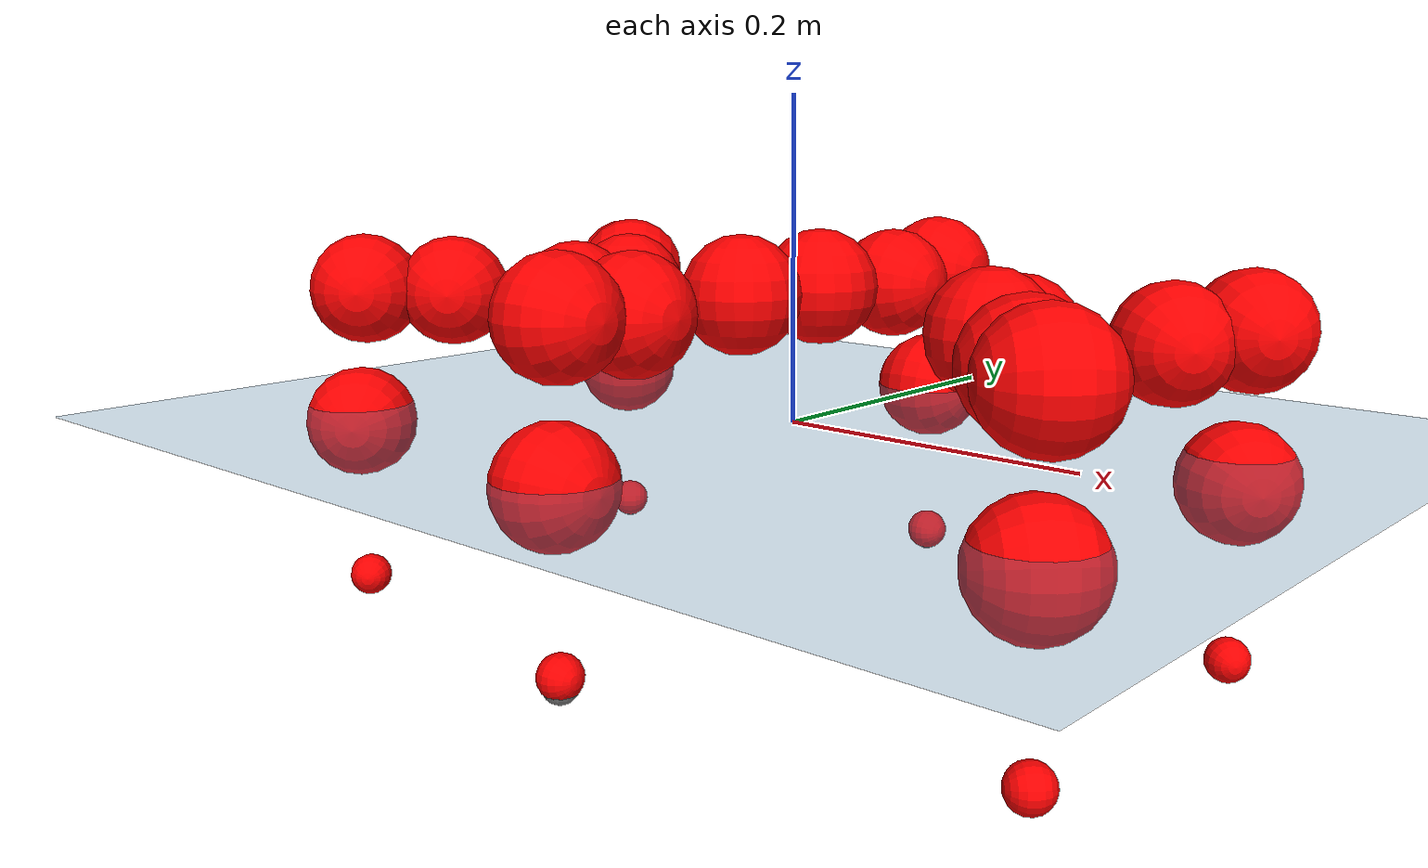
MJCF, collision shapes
<mujoco model="Golem">
  <compiler angle="radian" assetdir="assets" balanceinertia="true" inertiafromgeom="false"/>

  <option timestep="0.005" density="1.2" viscosity="2e-05"/>

  <size nkey="1"/>

  <visual>
    <quality shadowsize="8192"/>
    <map shadowclip="0.5"/>
  </visual>

  <default>
    <default class="/">
      <joint armature="0.01" damping="0.01" frictionloss="0.01"/>
      <geom contype="0" conaffinity="0" group="1" solref="-1000 -80"/>
      <site size="0.01 0.005 0.005" group="5"/>
      <general forcelimited="true" biastype="affine" gainprm="25" biasprm="0 -25 -0.5"/>
      <default class="visual">
        <geom type="mesh" group="2"/>
      </default>
      <default class="collision">
        <geom group="3"/>
      </default>
      <default class="foot">
        <geom size="0.01 0 0" condim="6" group="4" priority="1" solimp="0.015 1 0.01"/>
      </default>
      <default class="reward_collision_sphere">
        <geom group="5" rgba="1 0 0 1"/>
      </default>
    </default>
  </default>

  <asset>
    <texture type="skybox" colorspace="auto" name="//unnamed_texture_0" builtin="gradient" rgb1="0.95 0.95 0.95" rgb2="0.95 0.95 0.95" width="100" height="600"/>
    <texture type="2d" colorspace="auto" name="texplane" builtin="checker" rgb1="0.345 0.575 0.748" rgb2="0.345 0.575 0.748" markrgb="1 1 1" width="512" height="512"/>
    <material name="MatPlane" class="/" texture="texplane" texuniform="true" texrepeat="2 2" specular="0.9"/>
    <mesh name="body" class="/" file="body.stl" scale="0.001 0.001 0.001"/>
    <mesh name="coxa" class="/" file="coxa.stl" scale="0.001 0.001 0.001"/>
    <mesh name="femur" class="/" file="femur.stl" scale="0.001 0.001 0.001"/>
    <mesh name="tibia" class="/" file="tibia.stl" scale="0.001 0.001 0.001"/>
    <mesh name="tarsus" class="/" file="tarsus.stl" scale="0.001 0.001 0.001"/>
  </asset>

  <worldbody>
    <geom name="floor" class="/" size="100 100 0.125" type="plane" group="0" material="MatPlane"/>
    <light name="toplight_shadow" class="/" pos="0 0 5" dir="0.0990148 0.0990148 -0.990148" type="directional" ambient="0.04 0.04 0.04" diffuse="0.55 0.55 0.55" specular="0.12 0.12 0.12"/>
    <light name="toplight_fill" class="/" pos="0 0 5" dir="0.0990148 0.0990148 -0.990148" type="directional" castshadow="false" ambient="0.04 0.04 0.04" diffuse="0.3 0.3 0.3" specular="0.08 0.08 0.08"/>
    <body name="trunk" pos="-0.0014124 -0.0076871 -0.00371527" quat="1 -0.000224005 -0.000709437 0.000499142">
      <inertial pos="0.00226868 0.00142566 0.00896321" quat="0.999952 0.00107274 0.00385466 0.0089652" mass="2.26575" diaginertia="0.00912397 0.000231791 0.0282829"/>
      <joint name="//unnamed_joint_0" type="free"/>
      <geom name="//unnamed_geom_1" class="/" pos="0 0 0.0784453" quat="1 0 0 0" type="mesh" rgba="0.9 0.9 0.9 1" mesh="body"/>
      <site name="imu" class="/" pos="0.120044 0.0215871 0.113694" size="0.0089744"/>
      <camera name="track" class="/" pos="0 -0.953881 0" quat="0.707107 0.707107 0 0" mode="trackcom"/>
      <camera name="ego_camera" class="/" pos="0.128657 0 0.122571" quat="-0.5 -0.5 0.5 0.5"/>
      <body name="coxa_RR" pos="-0.179178 -0.0478639 0.0733093" quat="0.385019 0.000413931 0.00241406 -0.922906">
        <inertial pos="6.49428e-05 0.0090165 -0.0084621" quat="0.999894 -0.00863321 -0.0113708 -0.00268526" mass="0.130569" diaginertia="0.00911882 0.000245496 0.0275867"/>
        <joint name="coxa_joint_RR" class="/" pos="0 0 0" axis="0.000225441 0.0093805 -0.999956" range="-3.2506 3.13013" armature="0.00871256" damping="0.0229894" frictionloss="0.00834352"/>
        <geom name="//unnamed_geom_2" class="/" type="mesh" rgba="0.2 0.2 0.2 1" mesh="coxa"/>
        <geom name="//unnamed_geom_3" class="reward_collision_sphere" size="0.0358976" pos="-0.0296901 0 0"/>
        <body name="femur_RR" pos="0.049925 0.000635451 0.00398649" quat="0.498401 -0.499202 0.499302 0.503082">
          <inertial pos="0.00559418 -0.00209423 -0.00013984" quat="0.999999 0.000532044 -0.00117056 -0.000490639" mass="0.14016" diaginertia="0.00918005 0.000235815 0.0265578"/>
          <joint name="femur_joint_RR" class="/" pos="0 0 0" axis="0.00403058 -0.011466 -0.999926" range="-3.05063 3.06966" armature="0.011445" damping="0.0270464" frictionloss="0.00925814"/>
          <geom name="//unnamed_geom_4" class="/" type="mesh" rgba="0.9 0.9 0.9 1" mesh="femur"/>
          <geom name="//unnamed_geom_5" class="reward_collision_sphere" size="0.0358976"/>
          <body name="tibia_RR" pos="-0.00257424 -0.0563213 0.00254643" quat="0.000713682 1 -0.000408053 8.22382e-06">
            <inertial pos="-0.00296924 0.00206619 0.000319355" quat="0.999869 -0.0127392 0.0024047 -0.00964028" mass="0.149131" diaginertia="0.00893402 0.000220153 0.0234784"/>
            <joint name="tibia_joint_RR" class="/" pos="0 0 0" axis="-0.0227767 0.0113712 0.999676" stiffness="0.0106038" range="-3.09016 3.34294" armature="0.00846279" damping="0" frictionloss="0.00956285"/>
            <geom name="//unnamed_geom_6" class="/" type="mesh" rgba="0.2 0.2 0.2 1" mesh="tibia"/>
            <geom name="//unnamed_geom_7" class="reward_collision_sphere" size="0.0358976"/>
            <body name="tarsus_RR" pos="0.0882643 0.00762507 0.00023669" quat="1 -0.000650912 -0.000320071 0.000422458">
              <inertial pos="0.0539057 -0.0100603 0.00659534" quat="0.502716 0.492549 0.495786 0.508791" mass="0.127747" diaginertia="0.00893773 0.000204189 0.0247483"/>
              <joint name="tarsus_joint_RR" class="/" pos="0 0 0" axis="-0.0181637 0.00551808 0.99982" range="-3.31524 3.15652" armature="0.00851213" damping="0.0448838" frictionloss="0.00767584"/>
              <geom name="//unnamed_geom_8" class="/" type="mesh" rgba="0.9 0.9 0.9 1" mesh="tarsus"/>
              <geom name="foot_1" class="foot" size="0.00834417" pos="0.110843 0 0" quat="0 -0.707107 0 0.707107"/>
              <geom name="//unnamed_geom_10" class="reward_collision_sphere" size="0.0358976"/>
              <geom name="//unnamed_geom_11" class="reward_collision_sphere" size="0.0134616" pos="0.10639 0 0"/>
              <site name="foot_1" class="foot" pos="0.110843 0 0" quat="0 -0.707107 0 0.707107" size="0.0089744"/>
            </body>
          </body>
        </body>
      </body>
      <body name="coxa_RM" pos="-0.00239877 -0.065054 0.0867676" quat="0.706913 0.000275771 -0.000190223 -0.7073">
        <inertial pos="-0.00103549 -0.00231227 -0.000330495" quat="0.999952 -0.00444441 -0.00867335 -0.00116304" mass="0.152631" diaginertia="0.00952835 0.00024079 0.0275711"/>
        <joint name="coxa_joint_RM" class="/" pos="0 0 0" axis="0.00729777 0.00565516 -0.999957" stiffness="0.0404156" range="-3.15065 3.14135" armature="0.00813599" damping="0.0317662" frictionloss="0.0133477"/>
        <geom name="//unnamed_geom_12" class="/" type="mesh" rgba="0.2 0.2 0.2 1" mesh="coxa"/>
        <geom name="//unnamed_geom_13" class="reward_collision_sphere" size="0.0358976" pos="-0.0296901 0 0"/>
        <body name="femur_RM" pos="0.0542448 -0.00429958 -0.00342553" quat="0.499937 -0.499842 0.500428 0.499793">
          <inertial pos="-0.00141798 0.00306945 -0.0056841" quat="0.999999 0.00156891 0.00036819 -0.000207708" mass="0.13783" diaginertia="0.0101843 0.000243569 0.0267684"/>
          <joint name="femur_joint_RM" class="/" pos="0 0 0" axis="0.000350774 0.00230078 -0.999997" stiffness="0.00353546" range="-3.13535 3.19723" armature="0.00810592" damping="0.0340435" frictionloss="0.00807566"/>
          <geom name="//unnamed_geom_14" class="/" type="mesh" rgba="0.9 0.9 0.9 1" mesh="femur"/>
          <geom name="//unnamed_geom_15" class="reward_collision_sphere" size="0.0358976"/>
          <body name="tibia_RM" pos="-0.00417291 -0.0544467 0.000487774" quat="-0.000136755 1 -0.000216124 5.96853e-05">
            <inertial pos="0.00900939 0.00777329 -0.000832015" quat="0.998944 0.0110547 0.0347488 -0.0279379" mass="0.146917" diaginertia="0.0092328 0.000245395 0.0306457"/>
            <joint name="tibia_joint_RM" class="/" pos="0 0 0" axis="0.00138369 -0.00611157 0.99998" range="-3.09915 3.08945" armature="0.00755349" damping="0" frictionloss="0.00738264"/>
            <geom name="//unnamed_geom_16" class="/" type="mesh" rgba="0.2 0.2 0.2 1" mesh="tibia"/>
            <geom name="//unnamed_geom_17" class="reward_collision_sphere" size="0.0358976"/>
            <body name="tarsus_RM" pos="0.0898954 0.00479659 0.000154168" quat="1 2.20624e-05 2.55786e-05 -6.35581e-05">
              <inertial pos="0.0579265 0.00306194 -0.000722004" quat="0.500448 0.499683 0.493394 0.50639" mass="0.136051" diaginertia="0.00879187 0.000229864 0.0261786"/>
              <joint name="tarsus_joint_RM" class="/" pos="0 0 0" axis="-2.98926e-05 0.000669519 1" stiffness="0.00911258" range="-3.14314 3.09789" armature="0.0128377" damping="0" frictionloss="0.00974873"/>
              <geom name="//unnamed_geom_18" class="/" type="mesh" rgba="0.9 0.9 0.9 1" mesh="tarsus"/>
              <geom name="foot_2" class="foot" size="0.0109769" pos="0.110843 0 0" quat="0 -0.707107 0 0.707107"/>
              <geom name="//unnamed_geom_20" class="reward_collision_sphere" size="0.0358976"/>
              <geom name="//unnamed_geom_21" class="reward_collision_sphere" size="0.0134616" pos="0.10639 0 0"/>
              <site name="foot_2" class="foot" pos="0.110843 0 0" quat="0 -0.707107 0 0.707107" size="0.0089744"/>
            </body>
          </body>
        </body>
      </body>
      <body name="coxa_RF" pos="0.181821 -0.0413727 0.0781769" quat="0.923871 -4.85904e-05 -8.96284e-05 -0.382704">
        <inertial pos="-0.00678968 2.55954e-05 -0.000418519" quat="0.99997 -0.00613253 0.00408108 -0.00234066" mass="0.142641" diaginertia="0.00852419 0.000250483 0.0304038"/>
        <joint name="coxa_joint_RF" class="/" pos="0 0 0" axis="0.00316771 0.00136323 -0.999994" stiffness="0.00231607" range="-3.06024 3.10478" armature="0.0102511" damping="0.0313145" frictionloss="0.00811855"/>
        <geom name="//unnamed_geom_22" class="/" type="mesh" rgba="0.2 0.2 0.2 1" mesh="coxa"/>
        <geom name="//unnamed_geom_23" class="reward_collision_sphere" size="0.0358976" pos="-0.0296901 0 0"/>
        <body name="femur_RF" pos="0.0506037 0.000520642 -0.00343585" quat="0.499376 -0.499094 0.500731 0.500796">
          <inertial pos="-0.00303192 -0.00127746 0.00598534" quat="1 -0.000890568 0.000407446 0.000151262" mass="0.150345" diaginertia="0.00953669 0.000212433 0.027364"/>
          <joint name="femur_joint_RF" class="/" pos="0 0 0" axis="-0.00370185 0.00583679 -0.999976" stiffness="0.0205979" range="-3.27975 3.11182" armature="0.00688671" damping="0.0332403" frictionloss="0.00845407"/>
          <geom name="//unnamed_geom_24" class="/" type="mesh" rgba="0.9 0.9 0.9 1" mesh="femur"/>
          <geom name="//unnamed_geom_25" class="reward_collision_sphere" size="0.0358976"/>
          <body name="tibia_RF" pos="-0.00285689 -0.0517257 -0.00327899" quat="-5.26469e-05 1 -0.000614317 -0.000167235">
            <inertial pos="-0.00115192 -0.00422187 0.00230089" quat="0.999999 0.00107374 -0.000162526 0.000607377" mass="0.146616" diaginertia="0.00842115 0.000260819 0.0259096"/>
            <joint name="tibia_joint_RF" class="/" pos="0 0 0" axis="-0.00214378 -0.00177242 0.999996" range="-3.10205 3.12479" armature="0.00823028" damping="0.00642036" frictionloss="0.0117358"/>
            <geom name="//unnamed_geom_26" class="/" type="mesh" rgba="0.2 0.2 0.2 1" mesh="tibia"/>
            <geom name="//unnamed_geom_27" class="reward_collision_sphere" size="0.0358976"/>
            <body name="tarsus_RF" pos="0.0885973 -0.00788228 0.00078374" quat="0.999991 -0.00333827 0.00163218 0.00201088">
              <inertial pos="0.0642963 0.00879845 -0.000478563" quat="0.526224 0.479781 0.470692 0.520911" mass="0.151516" diaginertia="0.00832731 0.000269157 0.0268975"/>
              <joint name="tarsus_joint_RF" class="/" pos="0 0 0" axis="-0.017954 -0.0232182 0.999569" stiffness="0.0417022" range="-3.3093 3.10343" armature="0.00466203" damping="0" frictionloss="0.00926245"/>
              <geom name="//unnamed_geom_28" class="/" type="mesh" rgba="0.9 0.9 0.9 1" mesh="tarsus"/>
              <geom name="foot_3" class="foot" size="0.00898404" pos="0.110843 0 0" quat="0 -0.707107 0 0.707107"/>
              <geom name="//unnamed_geom_30" class="reward_collision_sphere" size="0.0358976"/>
              <geom name="//unnamed_geom_31" class="reward_collision_sphere" size="0.0134616" pos="0.10639 0 0"/>
              <site name="foot_3" class="foot" pos="0.110843 0 0" quat="0 -0.707107 0 0.707107" size="0.0089744"/>
            </body>
          </body>
        </body>
      </body>
      <body name="coxa_LR" pos="-0.174487 0.0385879 0.0756593" quat="0.382022 0.000417928 0.000375573 0.924153">
        <inertial pos="0.000313186 0.0091757 0.000329262" quat="0.999541 -0.0222453 0.00185902 -0.0204659" mass="0.156848" diaginertia="0.0107316 0.000245891 0.0315001"/>
        <joint name="coxa_joint_LR" class="/" pos="0 0 0" axis="0.00337532 -0.0117028 -0.999926" stiffness="0.0233147" range="-3.09416 2.96629" armature="0.0124811" damping="0" frictionloss="0.00837634"/>
        <geom name="//unnamed_geom_32" class="/" type="mesh" rgba="0.2 0.2 0.2 1" mesh="coxa"/>
        <geom name="//unnamed_geom_33" class="reward_collision_sphere" size="0.0358976" pos="-0.0296901 0 0"/>
        <body name="femur_LR" pos="0.0490267 -9.21681e-05 0.00397387" quat="0.499193 -0.498805 0.49992 0.502075">
          <inertial pos="-0.00042321 0.000721876 0.000868278" quat="0.999089 0.00973091 0.0192024 -0.0368473" mass="0.14873" diaginertia="0.00958001 0.000243116 0.0238279"/>
          <joint name="femur_joint_LR" class="/" pos="0 0 0" axis="0.00452153 0.0128895 0.999907" stiffness="0.0309553" range="-3.33264 3.26042" armature="0.00755077" damping="0.0335924" frictionloss="0.00821192"/>
          <geom name="//unnamed_geom_34" class="/" type="mesh" rgba="0.9 0.9 0.9 1" mesh="femur"/>
          <geom name="//unnamed_geom_35" class="reward_collision_sphere" size="0.0358976"/>
          <body name="tibia_LR" pos="0.00397403 -0.0506644 0.00446291" quat="0.0013249 0.999999 0.000428313 0.000556873">
            <inertial pos="-0.00170836 0.00858749 -0.00460712" quat="0.999833 -0.00194638 0.0130508 -0.0126712" mass="0.148755" diaginertia="0.00916965 0.000245659 0.0283432"/>
            <joint name="tibia_joint_LR" class="/" pos="0 0 0" axis="0.00108662 -0.00187569 -0.999998" stiffness="0.00207138" range="-3.01671 3.07129" armature="0.0103869" damping="0.0645169" frictionloss="0.00718879"/>
            <geom name="//unnamed_geom_36" class="/" type="mesh" rgba="0.2 0.2 0.2 1" mesh="tibia"/>
            <geom name="//unnamed_geom_37" class="reward_collision_sphere" size="0.0358976"/>
            <body name="tarsus_LR" pos="0.077419 0.000582012 -0.000546607" quat="0.999994 -0.00238516 -0.00150883 -0.00204948">
              <inertial pos="0.053919 -0.000687997 0.00102001" quat="0.490759 0.513726 0.506842 0.488214" mass="0.137301" diaginertia="0.00923729 0.000231693 0.0267522"/>
              <joint name="tarsus_joint_LR" class="/" pos="0 0 0" axis="0.00418901 0.0137702 -0.999896" stiffness="0.034174" range="-2.99565 3.16485" armature="0.00880878" damping="0.0255713" frictionloss="0.0123854"/>
              <geom name="//unnamed_geom_38" class="/" type="mesh" rgba="0.9 0.9 0.9 1" mesh="tarsus"/>
              <geom name="foot_4" class="foot" size="0.00933396" pos="0.110843 0 0" quat="0.707107 0 -0.707107 0"/>
              <geom name="//unnamed_geom_40" class="reward_collision_sphere" size="0.0358976"/>
              <geom name="//unnamed_geom_41" class="reward_collision_sphere" size="0.0134616" pos="0.10639 0 0"/>
              <site name="foot_4" class="foot" pos="0.110843 0 0" quat="0.707107 0 -0.707107 0" size="0.0089744"/>
            </body>
          </body>
        </body>
      </body>
      <body name="coxa_LM" pos="0.00282197 0.0616274 0.0861818" quat="0.708093 -0.000668317 -0.000203222 0.706118">
        <inertial pos="0.00695722 0.000239671 0.00572912" quat="0.999997 -0.00145023 -0.00119655 -0.00145437" mass="0.151133" diaginertia="0.0105296 0.000280125 0.0255046"/>
        <joint name="coxa_joint_LM" class="/" pos="0 0 0" axis="0.00285384 -0.00503036 -0.999983" stiffness="0.00498724" range="-3.14261 3.11629" armature="0.00542117" damping="0.0499959" frictionloss="0.0108851"/>
        <geom name="//unnamed_geom_42" class="/" type="mesh" rgba="0.2 0.2 0.2 1" mesh="coxa"/>
        <geom name="//unnamed_geom_43" class="reward_collision_sphere" size="0.0358976" pos="-0.0296901 0 0"/>
        <body name="femur_LM" pos="0.0580778 0.00802729 -0.00591042" quat="0.500763 -0.499364 0.500193 0.49968">
          <inertial pos="-0.00587419 -0.0027441 -0.0077006" quat="0.999966 -0.00523547 -4.39829e-05 -0.00633453" mass="0.144254" diaginertia="0.00920653 0.00024533 0.0281045"/>
          <joint name="femur_joint_LM" class="/" pos="0 0 0" axis="0.00273104 0.00135077 0.999995" range="-3.10438 3.25459" armature="0.00791153" damping="0.0278254" frictionloss="0.00692158"/>
          <geom name="//unnamed_geom_44" class="/" type="mesh" rgba="0.9 0.9 0.9 1" mesh="femur"/>
          <geom name="//unnamed_geom_45" class="reward_collision_sphere" size="0.0358976"/>
          <body name="tibia_LM" pos="-0.00553793 -0.050028 -0.0008296" quat="0.000398841 0.999999 0.00111941 -0.000134989">
            <inertial pos="0.00368106 0.00878768 -0.00967335" quat="0.998797 0.00632023 0.0392572 0.0287136" mass="0.151606" diaginertia="0.0092191 0.000254982 0.0295252"/>
            <joint name="tibia_joint_LM" class="/" pos="0 0 0" axis="-0.0244875 0.0133941 -0.99961" stiffness="0.045291" range="-3.17063 3.29191" armature="0.00845496" damping="0.0166374" frictionloss="0.00871724"/>
            <geom name="//unnamed_geom_46" class="/" type="mesh" rgba="0.2 0.2 0.2 1" mesh="tibia"/>
            <geom name="//unnamed_geom_47" class="reward_collision_sphere" size="0.0358976"/>
            <body name="tarsus_LM" pos="0.083428 0.00421831 -0.00745618" quat="1 -0.000333094 9.26886e-05 0.00037132">
              <inertial pos="0.0615077 0.000624352 0.00671414" quat="0.467273 0.528416 0.495669 0.5067" mass="0.13591" diaginertia="0.00949734 0.000272287 0.0300299"/>
              <joint name="tarsus_joint_LM" class="/" pos="0 0 0" axis="0.00663129 -0.0345548 -0.999381" stiffness="0.0381195" range="-3.18287 3.28655" armature="0.00988773" damping="0.00307753" frictionloss="0.00913818"/>
              <geom name="//unnamed_geom_48" class="/" type="mesh" rgba="0.9 0.9 0.9 1" mesh="tarsus"/>
              <geom name="foot_5" class="foot" size="0.00953008" pos="0.110843 0 0" quat="0.707107 0 -0.707107 0"/>
              <geom name="//unnamed_geom_50" class="reward_collision_sphere" size="0.0358976"/>
              <geom name="//unnamed_geom_51" class="reward_collision_sphere" size="0.0134616" pos="0.10639 0 0"/>
              <site name="foot_5" class="foot" pos="0.110843 0 0" quat="0.707107 0 -0.707107 0" size="0.0089744"/>
            </body>
          </body>
        </body>
      </body>
      <body name="coxa_LF" pos="0.174302 0.0412472 0.0707106" quat="0.92267 -0.00070888 -0.00237078 0.385584">
        <inertial pos="0.000127806 -0.000480788 -0.00161765" quat="0.998807 0.00030952 -0.0212036 -0.0439794" mass="0.130885" diaginertia="0.00992918 0.000225173 0.0313965"/>
        <joint name="coxa_joint_LF" class="/" pos="0 0 0" axis="-0.00137008 -4.63649e-05 -0.999999" stiffness="0.0442116" range="-3.14088 3.12956" armature="0.0101903" damping="0.0249201" frictionloss="0.00946297"/>
        <geom name="//unnamed_geom_52" class="/" type="mesh" rgba="0.2 0.2 0.2 1" mesh="coxa"/>
        <geom name="//unnamed_geom_53" class="reward_collision_sphere" size="0.0358976" pos="-0.0296901 0 0"/>
        <body name="femur_LF" pos="0.0574459 -0.000721458 -0.00488798" quat="0.498949 -0.50045 0.500299 0.500302">
          <inertial pos="-0.00723017 0.000370222 -0.00862806" quat="0.99999 0.00218959 0.00347027 -0.00202932" mass="0.156197" diaginertia="0.0101046 0.000246091 0.0299595"/>
          <joint name="femur_joint_LF" class="/" pos="0 0 0" axis="-0.0152269 0.0121601 0.99981" range="-3.15071 2.93976" armature="0.00655313" damping="0.0350374" frictionloss="0.00988626"/>
          <geom name="//unnamed_geom_54" class="/" type="mesh" rgba="0.9 0.9 0.9 1" mesh="femur"/>
          <geom name="//unnamed_geom_55" class="reward_collision_sphere" size="0.0358976"/>
          <body name="tibia_LF" pos="-0.00604676 -0.0471737 0.00358745" quat="-0.000686159 0.999997 0.00173113 0.00128474">
            <inertial pos="-0.000127478 0.000601164 -0.000402724" quat="0.999965 0.000610184 0.00194376 0.00813733" mass="0.142748" diaginertia="0.00920557 0.000251466 0.0274435"/>
            <joint name="tibia_joint_LF" class="/" pos="0 0 0" axis="-0.000888524 -0.0308 -0.999525" range="-3.11197 3.04342" armature="0.012559" damping="0" frictionloss="0.00877438"/>
            <geom name="//unnamed_geom_56" class="/" type="mesh" rgba="0.2 0.2 0.2 1" mesh="tibia"/>
            <geom name="//unnamed_geom_57" class="reward_collision_sphere" size="0.0358976"/>
            <body name="tarsus_LF" pos="0.0876892 -0.00359404 -0.000566818" quat="1 -0.000458666 0.000435948 -4.2743e-05">
              <inertial pos="0.0656872 -0.000715766 -0.000541684" quat="0.500212 0.499615 0.501099 0.499071" mass="0.153913" diaginertia="0.00969393 0.000254187 0.0274838"/>
              <joint name="tarsus_joint_LF" class="/" pos="0 0 0" axis="-0.0104804 0.00337976 -0.999939" stiffness="0.030918" range="-2.97917 2.96953" armature="0.00867674" damping="0.0225587" frictionloss="0.00805698"/>
              <geom name="//unnamed_geom_58" class="/" type="mesh" rgba="0.9 0.9 0.9 1" mesh="tarsus"/>
              <geom name="foot_6" class="foot" size="0.00762171" pos="0.110843 0 0" quat="0.707107 0 -0.707107 0"/>
              <geom name="//unnamed_geom_60" class="reward_collision_sphere" size="0.0358976"/>
              <geom name="//unnamed_geom_61" class="reward_collision_sphere" size="0.0134616" pos="0.10639 0 0"/>
              <site name="foot_6" class="foot" pos="0.110843 0 0" quat="0.707107 0 -0.707107 0" size="0.0089744"/>
            </body>
          </body>
        </body>
      </body>
    </body>
  </worldbody>

  <contact>
    <pair class="/" geom1="floor" geom2="foot_1" name="//unnamed_contact_0"/>
    <pair class="/" geom1="floor" geom2="foot_2" name="//unnamed_contact_1"/>
    <pair class="/" geom1="floor" geom2="foot_3" name="//unnamed_contact_2"/>
    <pair class="/" geom1="floor" geom2="foot_4" name="//unnamed_contact_3"/>
    <pair class="/" geom1="floor" geom2="foot_5" name="//unnamed_contact_4"/>
    <pair class="/" geom1="floor" geom2="foot_6" name="//unnamed_contact_5"/>
  </contact>

  <actuator>
    <general name="coxa_joint_RR" class="/" joint="coxa_joint_RR" forcerange="-6.12169 6.12169" gainprm="20.7128" biasprm="0 -20.7128 -0.404072"/>
    <general name="femur_joint_RR" class="/" joint="femur_joint_RR" forcerange="-7.22553 7.22553" gainprm="20.7128" biasprm="0 -20.7128 -0.404072"/>
    <general name="tibia_joint_RR" class="/" joint="tibia_joint_RR" forcerange="-8.74205 8.74205" gainprm="20.7128" biasprm="0 -20.7128 -0.404072"/>
    <general name="tarsus_joint_RR" class="/" joint="tarsus_joint_RR" forcerange="-7.58794 7.58794" gainprm="20.7128" biasprm="0 -20.7128 -0.404072"/>
    <general name="coxa_joint_RM" class="/" joint="coxa_joint_RM" forcerange="-6.47769 6.47769" gainprm="20.7128" biasprm="0 -20.7128 -0.404072"/>
    <general name="femur_joint_RM" class="/" joint="femur_joint_RM" forcerange="-7.05528 7.05528" gainprm="20.7128" biasprm="0 -20.7128 -0.404072"/>
    <general name="tibia_joint_RM" class="/" joint="tibia_joint_RM" forcerange="-8.95816 8.95816" gainprm="20.7128" biasprm="0 -20.7128 -0.404072"/>
    <general name="tarsus_joint_RM" class="/" joint="tarsus_joint_RM" forcerange="-6.62455 6.62455" gainprm="20.7128" biasprm="0 -20.7128 -0.404072"/>
    <general name="coxa_joint_RF" class="/" joint="coxa_joint_RF" forcerange="-6.05018 6.05018" gainprm="20.7128" biasprm="0 -20.7128 -0.404072"/>
    <general name="femur_joint_RF" class="/" joint="femur_joint_RF" forcerange="-4.14186 4.14186" gainprm="20.7128" biasprm="0 -20.7128 -0.404072"/>
    <general name="tibia_joint_RF" class="/" joint="tibia_joint_RF" forcerange="-5.8819 5.8819" gainprm="20.7128" biasprm="0 -20.7128 -0.404072"/>
    <general name="tarsus_joint_RF" class="/" joint="tarsus_joint_RF" forcerange="-4.16479 4.16479" gainprm="20.7128" biasprm="0 -20.7128 -0.404072"/>
    <general name="coxa_joint_LR" class="/" joint="coxa_joint_LR" forcerange="-8.17718 8.17718" gainprm="20.7128" biasprm="0 -20.7128 -0.404072"/>
    <general name="femur_joint_LR" class="/" joint="femur_joint_LR" forcerange="-6.2495 6.2495" gainprm="20.7128" biasprm="0 -20.7128 -0.404072"/>
    <general name="tibia_joint_LR" class="/" joint="tibia_joint_LR" forcerange="-5.66029 5.66029" gainprm="20.7128" biasprm="0 -20.7128 -0.404072"/>
    <general name="tarsus_joint_LR" class="/" joint="tarsus_joint_LR" forcerange="-6.26899 6.26899" gainprm="20.7128" biasprm="0 -20.7128 -0.404072"/>
    <general name="coxa_joint_LM" class="/" joint="coxa_joint_LM" forcerange="-5.95384 5.95384" gainprm="20.7128" biasprm="0 -20.7128 -0.404072"/>
    <general name="femur_joint_LM" class="/" joint="femur_joint_LM" forcerange="-6.67431 6.67431" gainprm="20.7128" biasprm="0 -20.7128 -0.404072"/>
    <general name="tibia_joint_LM" class="/" joint="tibia_joint_LM" forcerange="-8.58549 8.58549" gainprm="20.7128" biasprm="0 -20.7128 -0.404072"/>
    <general name="tarsus_joint_LM" class="/" joint="tarsus_joint_LM" forcerange="-7.76807 7.76807" gainprm="20.7128" biasprm="0 -20.7128 -0.404072"/>
    <general name="coxa_joint_LF" class="/" joint="coxa_joint_LF" forcerange="-6.32314 6.32314" gainprm="20.7128" biasprm="0 -20.7128 -0.404072"/>
    <general name="femur_joint_LF" class="/" joint="femur_joint_LF" forcerange="-8.2635 8.2635" gainprm="20.7128" biasprm="0 -20.7128 -0.404072"/>
    <general name="tibia_joint_LF" class="/" joint="tibia_joint_LF" forcerange="-6.97417 6.97417" gainprm="20.7128" biasprm="0 -20.7128 -0.404072"/>
    <general name="tarsus_joint_LF" class="/" joint="tarsus_joint_LF" forcerange="-6.56131 6.56131" gainprm="20.7128" biasprm="0 -20.7128 -0.404072"/>
  </actuator>

  <sensor>
    <gyro site="imu" name="imu_angular_velocity"/>
    <velocimeter site="imu" name="imu_linear_velocity"/>
    <framelinvel objtype="site" objname="foot_1" name="foot_1_global_linear_velocity"/>
    <framelinvel objtype="site" objname="foot_2" name="foot_2_global_linear_velocity"/>
    <framelinvel objtype="site" objname="foot_3" name="foot_3_global_linear_velocity"/>
    <framelinvel objtype="site" objname="foot_4" name="foot_4_global_linear_velocity"/>
    <framelinvel objtype="site" objname="foot_5" name="foot_5_global_linear_velocity"/>
    <framelinvel objtype="site" objname="foot_6" name="foot_6_global_linear_velocity"/>
  </sensor>

  <keyframe>
    <key name="home" qpos="0 0 0.1457 1 0 0 0 0 0 0 0 0 0 0 0 0 0 0 0 0 0 0 0 0 0 0 0 0 0 0 0"/>
  </keyframe>
</mujoco>
